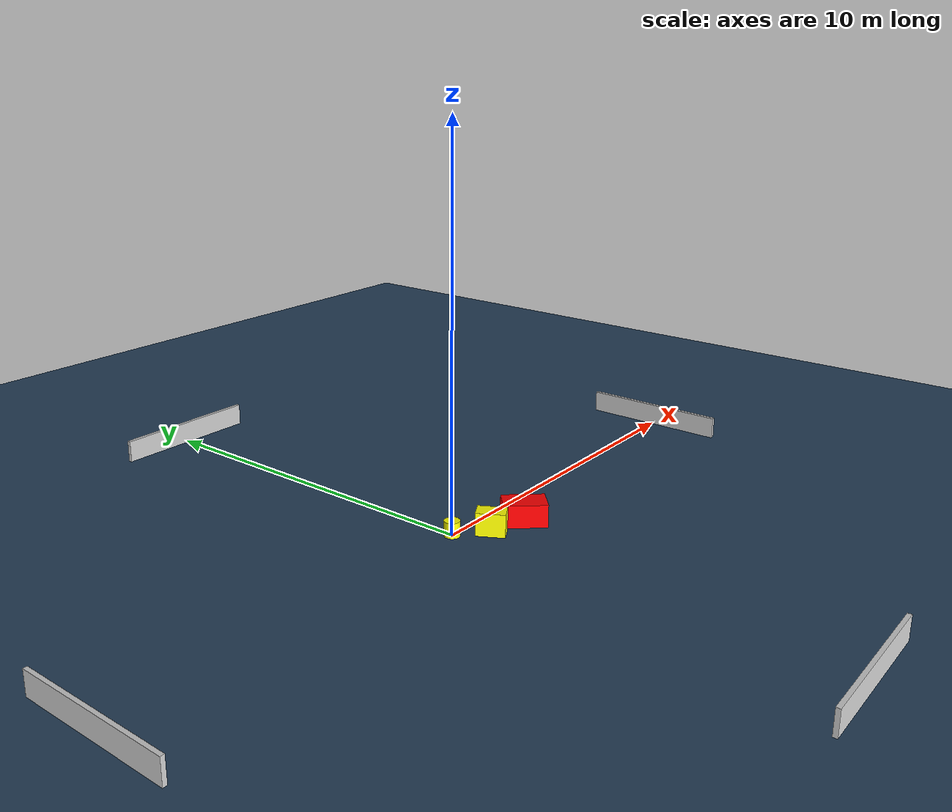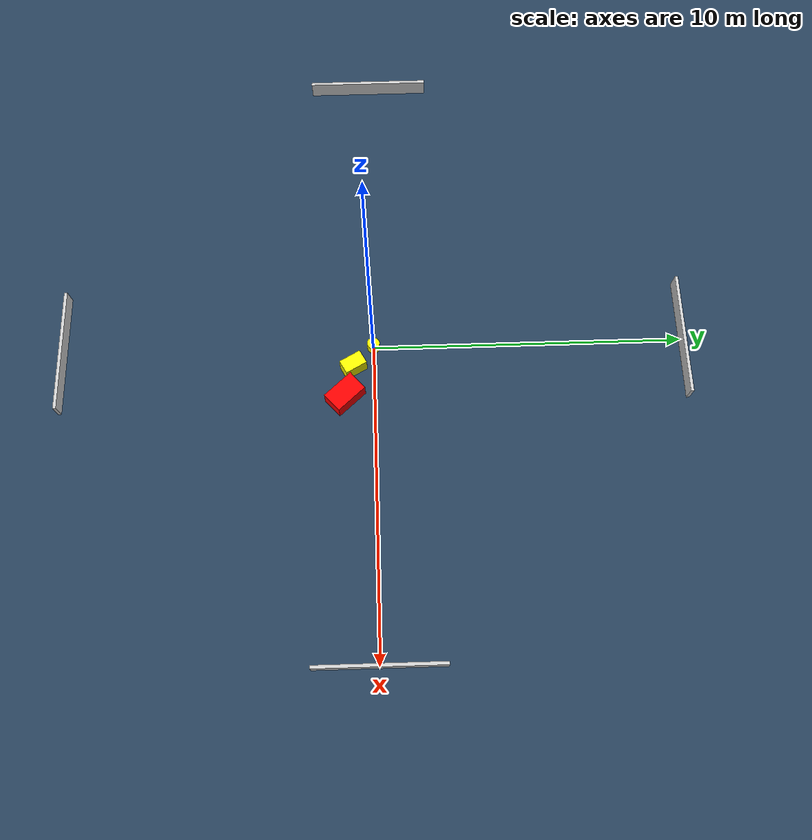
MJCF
<?xml version="1.0" ?>
<mujoco model="generated_environment">
  <option timestep="0.01" integrator="RK4" cone="elliptic"/>
  <default>
    <geom density="1"/>
  </default>
  <asset>
    <texture builtin="gradient" height="3072" name="skybox" rgb1="0.3 0.5 0.7" rgb2="0 0 0" type="skybox" width="512"/>
    <texture builtin="checker" height="300" name="groundplane" rgb1="0.2 0.3 0.4" rgb2="0.1 0.2 0.3" type="2d" width="300"/>
    <material name="groundplane" reflectance="0.2" texrepeat="5 5" texture="groundplane"/>
  </asset>
  <worldbody>
    <light dir="0 0 -1" directional="true" pos="0 0 1.5"/>
    <geom condim="3" friction="0.5 0.005 0.001" material="groundplane" name="floor" pos="0 0 0" size="0 0 0.05" type="plane"/>
    <body name="walls">
      <geom name="wall_1" condim="4" pos="-10.0 0.0 0.3" rgba="0.800000011920929 0.800000011920929 0.800000011920929 1.0" size="0.05 2.0 0.3" type="box"/>
      <geom name="wall_2" condim="4" pos="10.0 0.0 0.3" rgba="0.800000011920929 0.800000011920929 0.800000011920929 1.0" size="0.05 2.0 0.3" type="box"/>
      <geom name="wall_3" condim="4" pos="0.0 -10.0 0.3" rgba="0.800000011920929 0.800000011920929 0.800000011920929 1.0" size="2.0 0.05 0.3" type="box"/>
      <geom name="wall_4" condim="4" pos="0.0 10.0 0.3" rgba="0.800000011920929 0.800000011920929 0.800000011920929 1.0" size="2.0 0.05 0.3" type="box"/>
    </body>
    <body name="robot">
      <joint name="joint_x" type="slide" pos="0 0 0" axis="1 0 0"/>
      <joint name="joint_y" type="slide" pos="0 0 0" axis="0 1 0"/>
      <geom name="robot" type="cylinder" pos="0.0 0.0 0.2" size="0.2 0.2 0.0" mass="5.0" friction="1.0 0.005 0.0001" condim="4" rgba="1.0 1.0 0.0 1.0"/>
    </body>
    <body name="obstacle_1_movable">
      <geom name="obstacle_1_movable" condim="4" pos="0.7016834563894052 -0.6542356760250365 0.3" euler="0 0 118.99104105075212" friction="0.0 0.005 0.001" rgba="1.0 1.0 0.0 1.0" size="0.3701601989648545 0.22851582626294337 0.3" type="box" mass="0.1"/>
      <joint type="free"/>
    </body>
    <body name="obstacle_2_static">
      <geom name="obstacle_2_static" condim="4" pos="1.6897873589755306 -0.9277702885996223 0.3" euler="0 0 221.8236636761126" friction="0.0 0.005 0.001" rgba="1.0 0.0 0.0 1.0" size="0.34415106152446884 0.5556276998052428 0.3" type="box"/>
    </body>
  </worldbody>
  <actuator>
    <motor name="actuator_x" joint="joint_x" gear="1" ctrlrange="-1 1"/>
    <motor name="actuator_y" joint="joint_y" gear="1" ctrlrange="-1 1"/>
  </actuator>
</mujoco>
